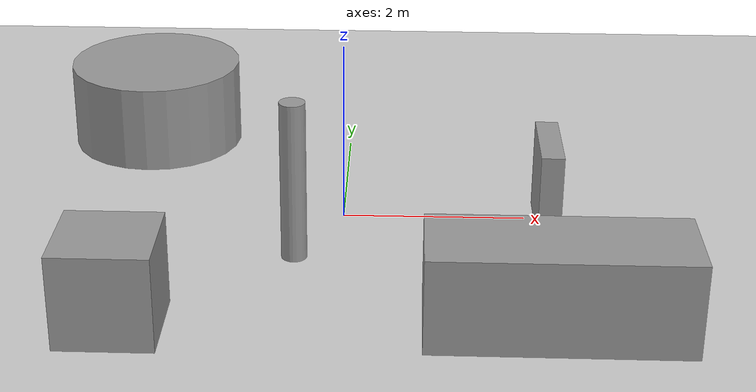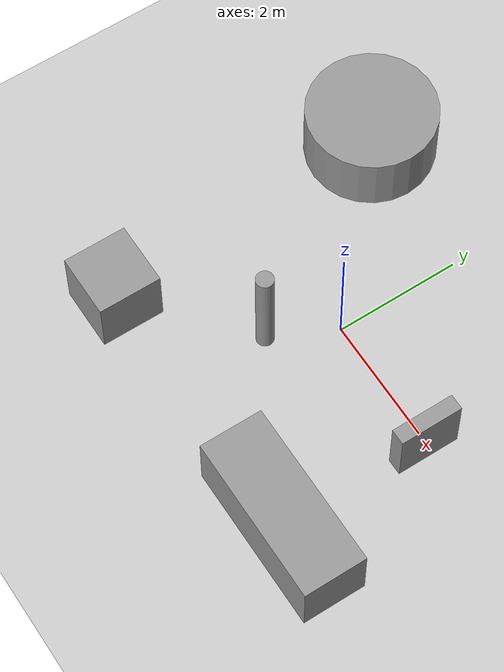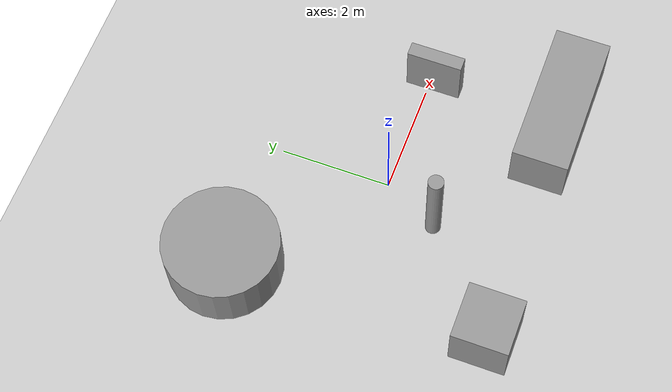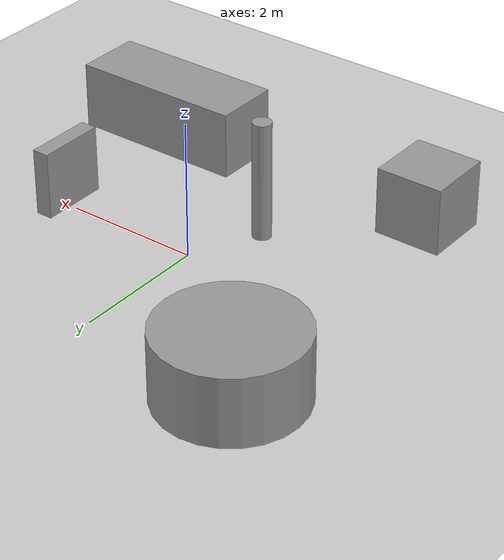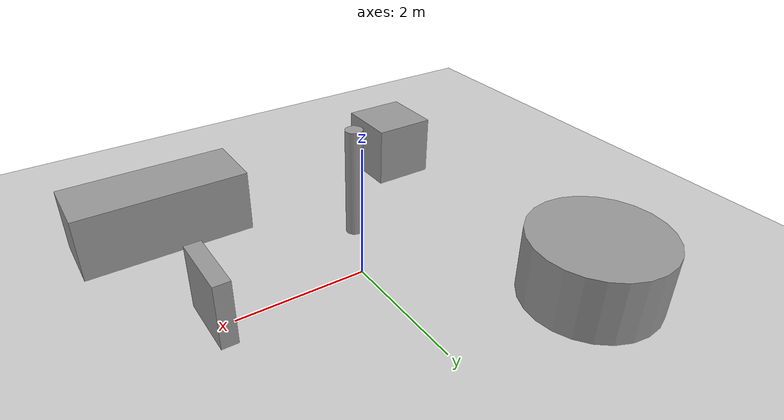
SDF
<sdf version="1.7">
 <world name="default">
  <light name="sun" type="directional">
   <pose>0 0 10 0 -0 0</pose>
   <diffuse>0.8 0.8 0.8 1</diffuse>
   <specular>0.2 0.2 0.2 1</specular>
   <attenuation>
    <range>1000</range>
    <constant>0.9</constant>
    <linear>0.01</linear>
    <quadratic>0.001</quadratic>
   </attenuation>
   <direction>-0.5 0.1 -0.9</direction>
   <spot><inner_angle>0</inner_angle><outer_angle>0</outer_angle><falloff>0</falloff></spot>
  </light>
  <model name="ground_plane">
   <static>1</static>
   <link name="link">
    <collision name="collision">
     <geometry><plane><normal>0 0 1</normal><size>100 100</size></plane></geometry>
     <surface>
      <contact><collide_bitmask>65535</collide_bitmask></contact>
      <friction><ode><mu>100</mu><mu2>50</mu2></ode></friction>
     </surface>
    </collision>
    <visual name="visual">
     <cast_shadows>0</cast_shadows>
     <geometry><plane><normal>0 0 1</normal><size>100 100</size></plane></geometry>
     <material>
      <script><uri>file://media/materials/scripts/gazebo.material</uri><name>Gazebo/Grey</name></script>
     </material>
    </visual>
   </link>
  </model>
  <gravity>0 0 -9.8</gravity>
  <magnetic_field>6e-06 2.3e-05 -4.2e-05</magnetic_field>
  <atmosphere type="adiabatic"/>
  <physics type="ode">
   <max_step_size>0.001</max_step_size>
   <real_time_factor>1</real_time_factor>
   <real_time_update_rate>1000</real_time_update_rate>
  </physics>
  <scene><ambient>0.4 0.4 0.4 1</ambient><background>0.7 0.7 0.7 1</background><shadows>1</shadows></scene>
  <audio><device>default</device></audio>
  <spherical_coordinates>
   <surface_model>EARTH_WGS84</surface_model>
   <latitude_deg>0</latitude_deg>
   <longitude_deg>0</longitude_deg>
   <elevation>0</elevation>
   <heading_deg>0</heading_deg>
  </spherical_coordinates>
  <model name="unit_cylinder">
   <pose>-0.487222 -1.00026 0.882838 0 -0 2.1e-05</pose>
   <link name="link">
    <inertial>
     <mass>1</mass>
     <inertia><ixx>0.145833</ixx><ixy>0</ixy><ixz>0</ixz><iyy>0.145833</iyy><iyz>0</iyz><izz>0.125</izz></inertia>
    </inertial>
    <collision name="collision">
     <geometry><cylinder><radius>0.137228</radius><length>1.76569</length></cylinder></geometry>
    </collision>
    <visual name="visual">
     <geometry><cylinder><radius>0.137228</radius><length>1.76569</length></cylinder></geometry>
     <material>
      <script><name>Gazebo/Grey</name><uri>file://media/materials/scripts/gazebo.material</uri></script>
     </material>
    </visual>
   </link>
  </model>
  <model name="unit_box">
   <pose>2.23552 -0.090746 0.5 0 -0 2e-06</pose>
   <link name="link">
    <inertial>
     <mass>1</mass>
     <inertia>
      <ixx>0.166667</ixx>
      <ixy>0</ixy>
      <ixz>0</ixz>
      <iyy>0.166667</iyy>
      <iyz>0</iyz>
      <izz>0.166667</izz>
     </inertia>
    </inertial>
    <collision name="collision"><geometry><box><size>0.247944 1 1</size></box></geometry></collision>
    <visual name="visual">
     <geometry><box><size>0.247944 1 1</size></box></geometry>
     <material>
      <script><name>Gazebo/Grey</name><uri>file://media/materials/scripts/gazebo.material</uri></script>
     </material>
    </visual>
   </link>
  </model>
  <model name="unit_box_0">
   <pose>-2.16677 -2.5166 0.499995 0 -1e-05 0</pose>
   <link name="link">
    <inertial>
     <mass>1</mass>
     <inertia>
      <ixx>0.166667</ixx>
      <ixy>0</ixy>
      <ixz>0</ixz>
      <iyy>0.166667</iyy>
      <iyz>0</iyz>
      <izz>0.166667</izz>
     </inertia>
    </inertial>
    <collision name="collision"><geometry><box><size>1 1 1</size></box></geometry></collision>
    <visual name="visual">
     <geometry><box><size>1 1 1</size></box></geometry>
     <material>
      <script><name>Gazebo/Grey</name><uri>file://media/materials/scripts/gazebo.material</uri></script>
     </material>
    </visual>
   </link>
  </model>
  <model name="unit_cylinder_0">
   <pose>-2.39105 2.13085 0.499993 -7e-06 7e-06 -2e-06</pose>
   <link name="link">
    <inertial>
     <mass>1</mass>
     <inertia><ixx>0.145833</ixx><ixy>0</ixy><ixz>0</ixz><iyy>0.145833</iyy><iyz>0</iyz><izz>0.125</izz></inertia>
    </inertial>
    <collision name="collision">
     <geometry><cylinder><radius>1.0148</radius><length>1</length></cylinder></geometry>
    </collision>
    <visual name="visual">
     <geometry><cylinder><radius>1.0148</radius><length>1</length></cylinder></geometry>
     <material>
      <script><name>Gazebo/Grey</name><uri>file://media/materials/scripts/gazebo.material</uri></script>
     </material>
    </visual>
   </link>
  </model>
  <model name="unit_box_1">
   <pose>2.17849 -2.44325 0.5 -0 -0 -1.1e-05</pose>
   <link name="link">
    <inertial>
     <mass>1</mass>
     <inertia>
      <ixx>0.166667</ixx>
      <ixy>0</ixy>
      <ixz>0</ixz>
      <iyy>0.166667</iyy>
      <iyz>0</iyz>
      <izz>0.166667</izz>
     </inertia>
    </inertial>
    <collision name="collision"><geometry><box><size>2.6254 1 1</size></box></geometry></collision>
    <visual name="visual">
     <geometry><box><size>2.6254 1 1</size></box></geometry>
     <material>
      <script><name>Gazebo/Grey</name><uri>file://media/materials/scripts/gazebo.material</uri></script>
     </material>
    </visual>
   </link>
  </model>
 </world>
</sdf>
